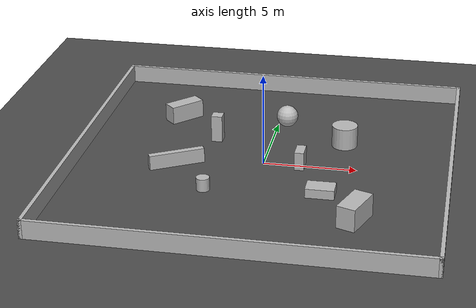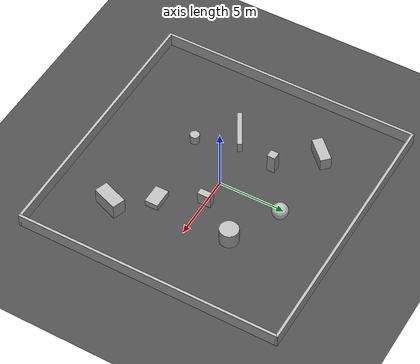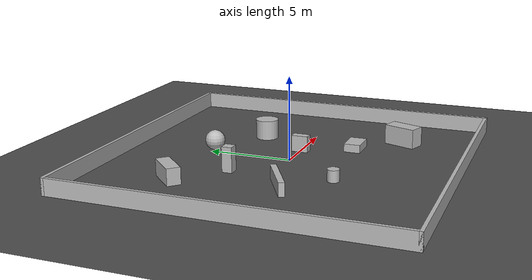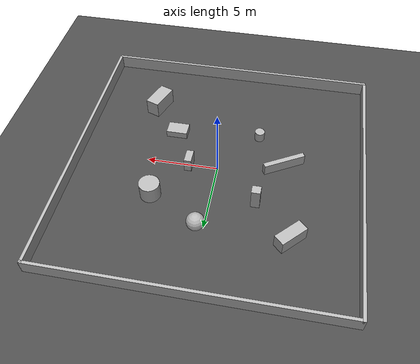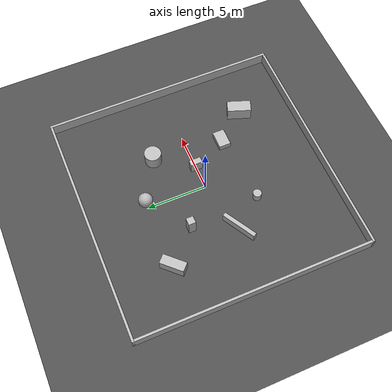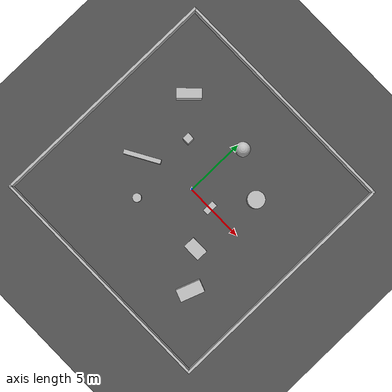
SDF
<?xml version="1.0"?>

<sdf version="1.9">

  <world name="lab">

    <physics name="physics" type="ignored">
      <max_step_size>0.001</max_step_size>
      <real_time_factor>1.0</real_time_factor>
    </physics>

    <plugin
      filename="gz-sim-physics-system"
      name="gz::sim::systems::Physics" />

    <plugin
      filename="gz-sim-user-commands-system"
      name="gz::sim::systems::UserCommands" />

    <plugin
      filename="gz-sim-scene-broadcaster-system"
      name="gz::sim::systems::SceneBroadcaster" />

    <plugin
      filename="gz-sim-sensors-system"
      name="gz::sim::systems::Sensors">
      <render_engine>ogre2</render_engine>
    </plugin>

    <!-- LIGHT -->

    <light type="directional" name="sun">

      <pose>0 0 10 0 0 0</pose>

      <diffuse>0.8 0.8 0.8 1</diffuse>
      <specular>0.2 0.2 0.2 1</specular>

      <direction>-0.5 0.1 -0.9</direction>

    </light>

    <!-- GROUND -->

    <model name="ground">

      <static>true</static>

      <link name="ground_link">

        <collision name="collision">
          <geometry>
            <plane>
              <normal>0 0 1</normal>
              <size>20 20</size>
            </plane>
          </geometry>
        </collision>

        <visual name="visual">
          <geometry>
            <plane>
              <normal>0 0 1</normal>
              <size>20 20</size>
            </plane>
          </geometry>

          <material>
            <ambient>0.3 0.3 0.3 1</ambient>
            <diffuse>0.3 0.3 0.3 1</diffuse>
            <specular>0.05 0.05 0.05 1</specular>
          </material>
        </visual>

      </link>

    </model>

    <!-- OUTER WALLS -->
    <!-- Arena is approximately 19.6 x 19.6 m internally -->

    <!-- North wall -->
    <model name="wall_north">
      <static>true</static>
      <pose>0 9.9 0.5 0 0 0</pose>

      <link name="link">

        <collision name="collision">
          <geometry>
            <box>
              <size>20 0.2 1.0</size>
            </box>
          </geometry>
        </collision>

        <visual name="visual">
          <geometry>
            <box>
              <size>20 0.2 1.0</size>
            </box>
          </geometry>
        </visual>

      </link>
    </model>

    <!-- South wall -->
    <model name="wall_south">
      <static>true</static>
      <pose>0 -9.9 0.5 0 0 0</pose>

      <link name="link">

        <collision name="collision">
          <geometry>
            <box>
              <size>20 0.2 1.0</size>
            </box>
          </geometry>
        </collision>

        <visual name="visual">
          <geometry>
            <box>
              <size>20 0.2 1.0</size>
            </box>
          </geometry>
        </visual>

      </link>
    </model>

    <!-- East wall -->
    <model name="wall_east">
      <static>true</static>
      <pose>9.9 0 0.5 0 0 0</pose>

      <link name="link">

        <collision name="collision">
          <geometry>
            <box>
              <size>0.2 20 1.0</size>
            </box>
          </geometry>
        </collision>

        <visual name="visual">
          <geometry>
            <box>
              <size>0.2 20 1.0</size>
            </box>
          </geometry>
        </visual>

      </link>
    </model>

    <!-- West wall -->
    <model name="wall_west">
      <static>true</static>
      <pose>-9.9 0 0.5 0 0 0</pose>

      <link name="link">

        <collision name="collision">
          <geometry>
            <box>
              <size>0.2 20 1.0</size>
            </box>
          </geometry>
        </collision>

        <visual name="visual">
          <geometry>
            <box>
              <size>0.2 20 1.0</size>
            </box>
          </geometry>
        </visual>

      </link>
    </model>

    <!-- OBSTACLES -->

    <!-- Original medium box -->
    <model name="obstacle_box_1">

      <static>true</static>
      <pose>2.0 0 0.5 0 0 0</pose>

      <link name="link">

        <collision name="collision">
          <geometry>
            <box>
              <size>0.5 1.0 1.0</size>
            </box>
          </geometry>
        </collision>

        <visual name="visual">
          <geometry>
            <box>
              <size>0.5 1.0 1.0</size>
            </box>
          </geometry>
        </visual>

      </link>

    </model>

    <!-- Tall narrow pillar -->
    <model name="obstacle_pillar">

      <static>true</static>
      <pose>-3.0 2.5 0.75 0 0 0</pose>

      <link name="link">

        <collision name="collision">
          <geometry>
            <box>
              <size>0.6 0.6 1.5</size>
            </box>
          </geometry>
        </collision>

        <visual name="visual">
          <geometry>
            <box>
              <size>0.6 0.6 1.5</size>
            </box>
          </geometry>
        </visual>

      </link>

    </model>

    <!-- Large cylinder -->
    <model name="obstacle_cylinder_large">

      <static>true</static>
      <pose>4.0 3.0 0.6 0 0 0</pose>

      <link name="link">

        <collision name="collision">
          <geometry>
            <cylinder>
              <radius>0.7</radius>
              <length>1.2</length>
            </cylinder>
          </geometry>
        </collision>

        <visual name="visual">
          <geometry>
            <cylinder>
              <radius>0.7</radius>
              <length>1.2</length>
            </cylinder>
          </geometry>
        </visual>

      </link>

    </model>

    <!-- Small cylinder -->
    <model name="obstacle_cylinder_small">

      <static>true</static>
      <pose>-2.5 -3.5 0.35 0 0 0</pose>

      <link name="link">

        <collision name="collision">
          <geometry>
            <cylinder>
              <radius>0.35</radius>
              <length>0.7</length>
            </cylinder>
          </geometry>
        </collision>

        <visual name="visual">
          <geometry>
            <cylinder>
              <radius>0.35</radius>
              <length>0.7</length>
            </cylinder>
          </geometry>
        </visual>

      </link>

    </model>

    <!-- Low wide box -->
    <model name="obstacle_low_box">

      <static>true</static>
      <pose>3.5 -3.0 0.25 0 0 0</pose>

      <link name="link">

        <collision name="collision">
          <geometry>
            <box>
              <size>1.5 1.0 0.5</size>
            </box>
          </geometry>
        </collision>

        <visual name="visual">
          <geometry>
            <box>
              <size>1.5 1.0 0.5</size>
            </box>
          </geometry>
        </visual>

      </link>

    </model>

    <!-- Long diagonal barrier -->
    <model name="obstacle_barrier">

      <static>true</static>

      <!-- yaw = about 30 degrees -->
      <pose>-4.5 -1.0 0.4 0 0 0.52</pose>

      <link name="link">

        <collision name="collision">
          <geometry>
            <box>
              <size>3.0 0.35 0.8</size>
            </box>
          </geometry>
        </collision>

        <visual name="visual">
          <geometry>
            <box>
              <size>3.0 0.35 0.8</size>
            </box>
          </geometry>
        </visual>

      </link>

    </model>

    <!-- Sphere -->
    <model name="obstacle_sphere">

      <static>true</static>
      <pose>0.5 5.0 0.6 0 0 0</pose>

      <link name="link">

        <collision name="collision">
          <geometry>
            <sphere>
              <radius>0.6</radius>
            </sphere>
          </geometry>
        </collision>

        <visual name="visual">
          <geometry>
            <sphere>
              <radius>0.6</radius>
            </sphere>
          </geometry>
        </visual>

      </link>

    </model>

    <!-- Rectangular obstacle near far side -->
    <model name="obstacle_box_2">

      <static>true</static>
      <pose>5.5 -5.5 0.6 0 0 -0.35</pose>

      <link name="link">

        <collision name="collision">
          <geometry>
            <box>
              <size>1.0 2.0 1.2</size>
            </box>
          </geometry>
        </collision>

        <visual name="visual">
          <geometry>
            <box>
              <size>1.0 2.0 1.2</size>
            </box>
          </geometry>
        </visual>

      </link>

    </model>

    <!-- Another box, rotated -->
    <model name="obstacle_box_3">

      <static>true</static>
      <pose>-5.5 5.0 0.5 0 0 0.8</pose>

      <link name="link">

        <collision name="collision">
          <geometry>
            <box>
              <size>2.0 0.8 1.0</size>
            </box>
          </geometry>
        </collision>

        <visual name="visual">
          <geometry>
            <box>
              <size>2.0 0.8 1.0</size>
            </box>
          </geometry>
        </visual>

      </link>

    </model>

  </world>

</sdf>
